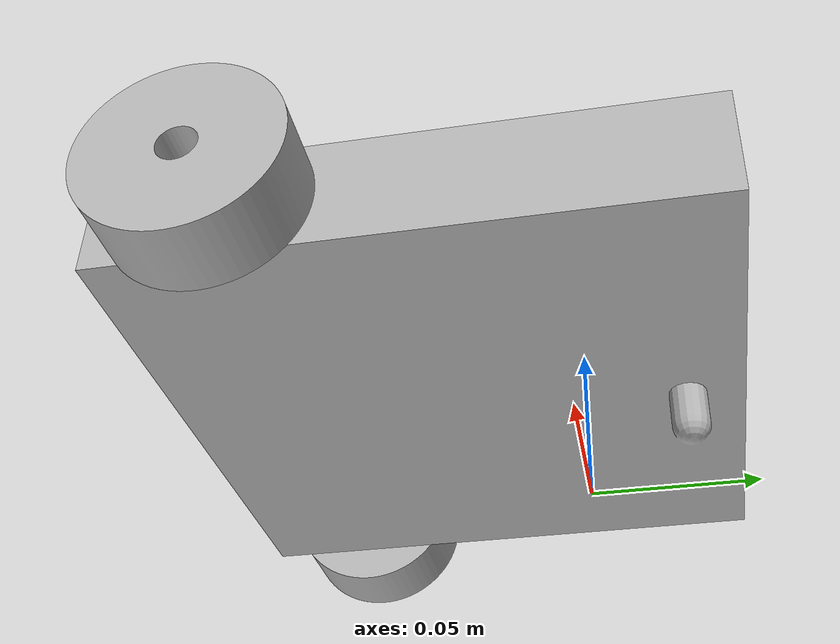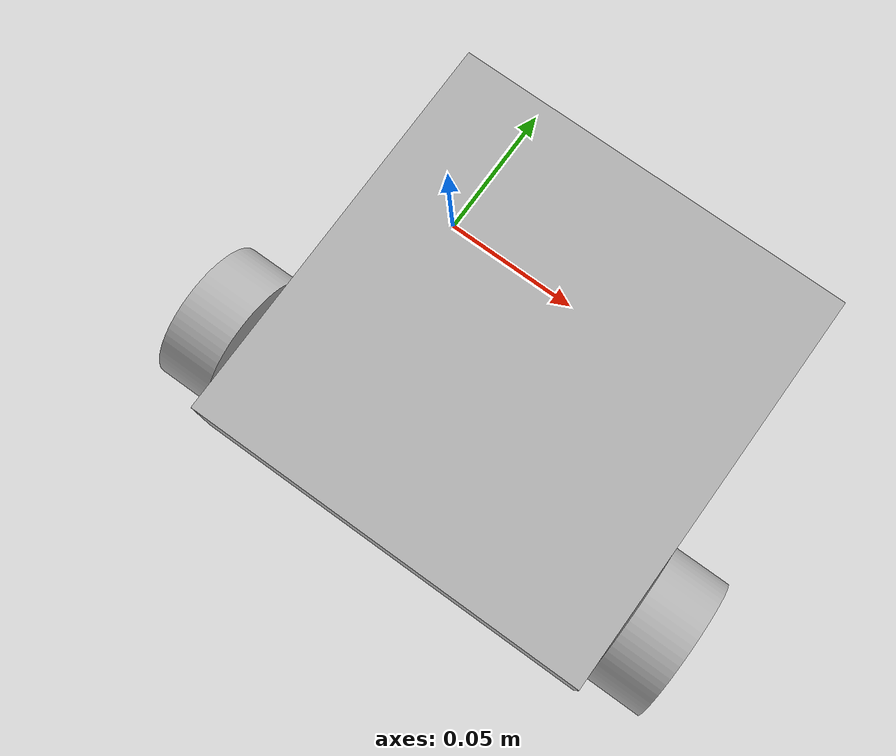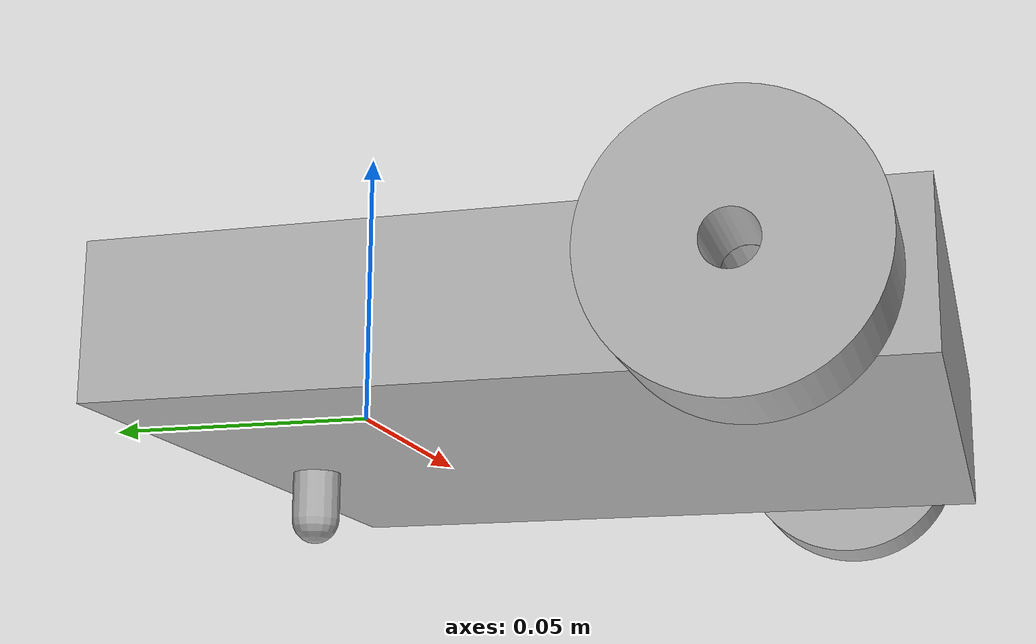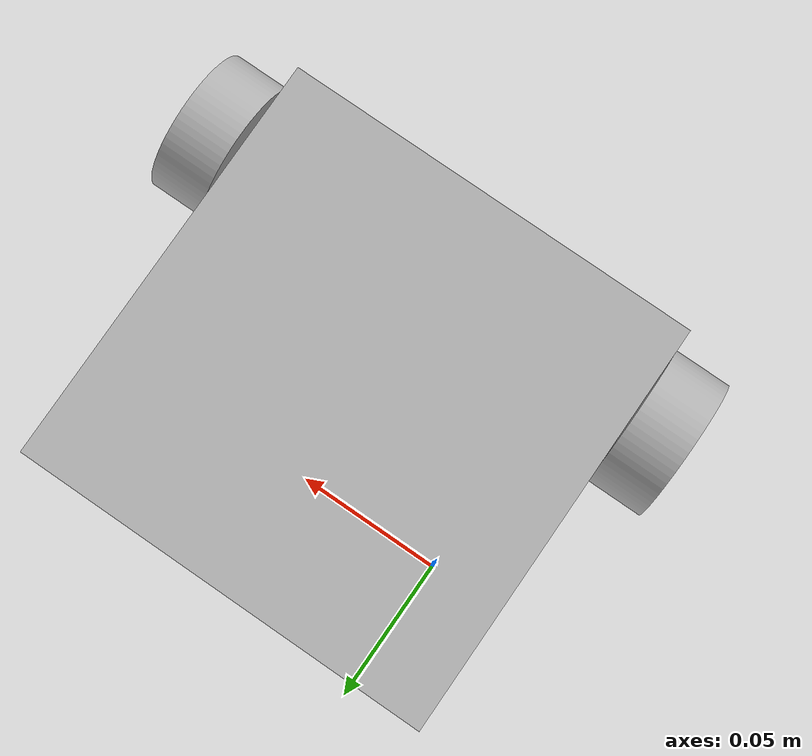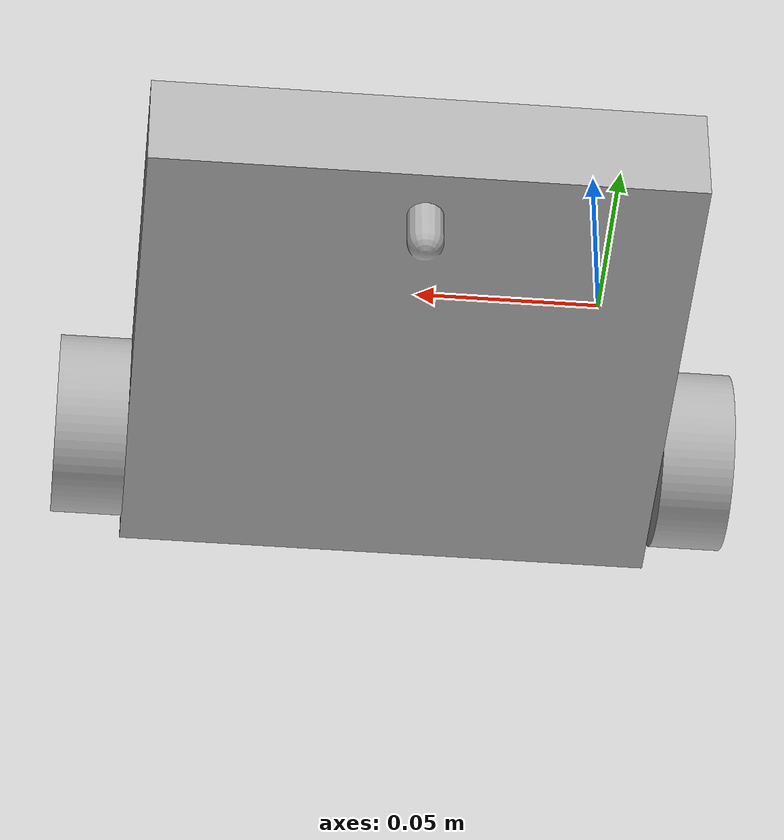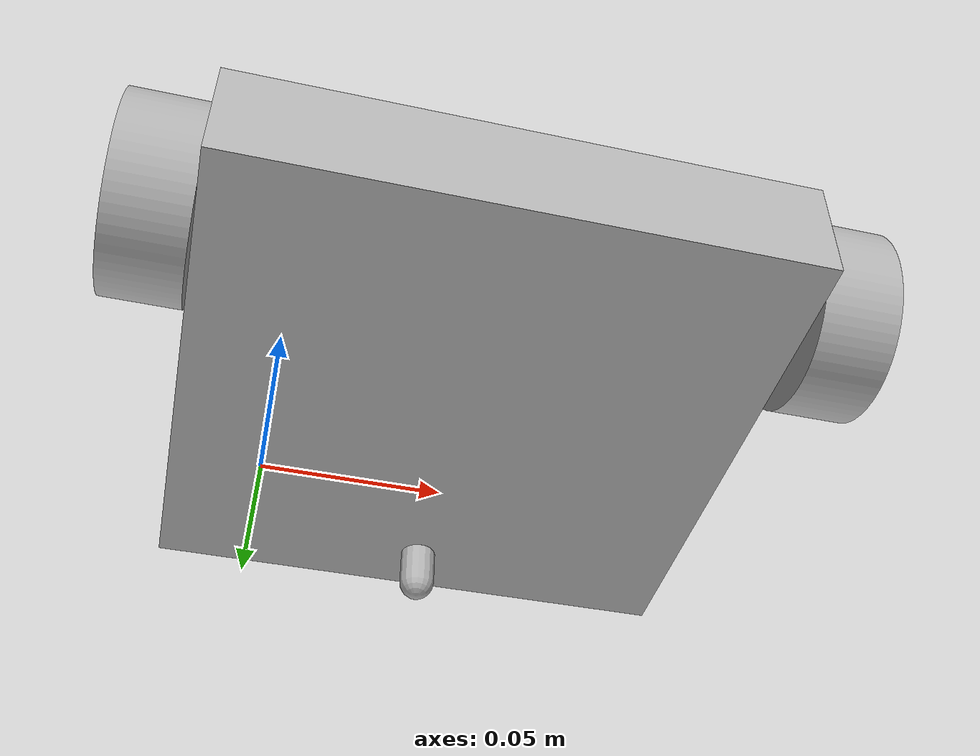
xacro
<?xml version="1.0" ?>
<robot name="Manual" xmlns:xacro="http://www.ros.org/wiki/xacro">

<xacro:include filename="$(find Manual_description)/urdf/materials.xacro" />
<xacro:include filename="$(find Manual_description)/urdf/Manual.trans" />
<xacro:include filename="$(find Manual_description)/urdf/Manual.gazebo" />
<link name="base_link">
  <inertial>
    <origin xyz="0.05000000000000093 -0.029107322349144583 0.014965760984142127" rpy="0 0 0"/>
    <mass value="5.214489867036844"/>
    <inertia ixx="0.010174" iyy="0.010163" izz="0.019535" ixy="-0.0" iyz="1.1e-05" ixz="0.0"/>
  </inertial>
  <visual>
    <origin xyz="0 0 0" rpy="0 0 0"/>
    <geometry>
      <mesh filename="package://Manual_description/meshes/base_link.stl" scale="0.001 0.001 0.001"/>
    </geometry>
    <material name="silver"/>
  </visual>
  <collision>
    <origin xyz="0 0 0" rpy="0 0 0"/>
    <geometry>
      <mesh filename="package://Manual_description/meshes/base_link.stl" scale="0.001 0.001 0.001"/>
    </geometry>
  </collision>
</link>

<link name="wheelR_1">
  <inertial>
    <origin xyz="0.010000000000000064 0.0 2.1831494945168117e-14" rpy="0 0 0"/>
    <mass value="0.295938027968158"/>
    <inertia ixx="9.6e-05" iyy="5.8e-05" izz="5.8e-05" ixy="0.0" iyz="0.0" ixz="0.0"/>
  </inertial>
  <visual>
    <origin xyz="-0.125 0.075 -0.015" rpy="0 0 0"/>
    <geometry>
      <mesh filename="package://Manual_description/meshes/wheelR_1.stl" scale="0.001 0.001 0.001"/>
    </geometry>
    <material name="silver"/>
  </visual>
  <collision>
    <origin xyz="-0.125 0.075 -0.015" rpy="0 0 0"/>
    <geometry>
      <mesh filename="package://Manual_description/meshes/wheelR_1.stl" scale="0.001 0.001 0.001"/>
    </geometry>
  </collision>
</link>

<link name="WheelL_1">
  <inertial>
    <origin xyz="-0.010000000000000002 -2.1788126858268697e-14 -1.734723475976807e-17" rpy="0 0 0"/>
    <mass value="0.295938027968158"/>
    <inertia ixx="9.6e-05" iyy="5.8e-05" izz="5.8e-05" ixy="0.0" iyz="-0.0" ixz="0.0"/>
  </inertial>
  <visual>
    <origin xyz="0.025 0.075 -0.015" rpy="0 0 0"/>
    <geometry>
      <mesh filename="package://Manual_description/meshes/WheelL_1.stl" scale="0.001 0.001 0.001"/>
    </geometry>
    <material name="silver"/>
  </visual>
  <collision>
    <origin xyz="0.025 0.075 -0.015" rpy="0 0 0"/>
    <geometry>
      <mesh filename="package://Manual_description/meshes/WheelL_1.stl" scale="0.001 0.001 0.001"/>
    </geometry>
  </collision>
</link>

<joint name="Revolute 1" type="continuous">
  <origin xyz="0.125 -0.075 0.015" rpy="0 0 0"/>
  <parent link="base_link"/>
  <child link="wheelR_1"/>
  <axis xyz="-1.0 0.0 0.0"/>
</joint>

<joint name="Revolute 2" type="continuous">
  <origin xyz="-0.025 -0.075 0.015" rpy="0 0 0"/>
  <parent link="base_link"/>
  <child link="WheelL_1"/>
  <axis xyz="1.0 0.0 0.0"/>
</joint>

</robot>

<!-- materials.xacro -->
<robot name="Manual" xmlns:xacro="http://www.ros.org/wiki/xacro" >

<material name="silver">
  <color rgba="0.700 0.700 0.700 1.000"/>
</material>

</robot>

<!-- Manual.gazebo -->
<robot name="Manual" xmlns:xacro="http://www.ros.org/wiki/xacro" >

<xacro:property name="body_color" value="Gazebo/Silver" />
<!-- property of base_link -->
<xacro:property name="base_link_length" value="0.15"/>
<xacro:property name="wheel_radius" value="0.05"/>

<gazebo>
	<plugin  name="diff_drive" filename="libgazebo_ros_diff_drive.so">
		<robotNamespace>/</robotNamespace>
		<commandTopic>/cmd_vel</commandTopic>
		<odometryTopic>odom</odometryTopic>
		<odometryFrame>odom</odometryFrame>
		<robotBaseFrame>base_link</robotBaseFrame>
		<publishWheelTF>false</publishWheelTF>
		<publishOdomTF>true</publishOdomTF>
    <alwaysOn>true</alwaysOn>
		<publishWheelJointState>false</publishWheelJointState>
		<legacyMode>true</legacyMode>

		<wheelSeparation>${wheel_radius}</wheelSeparation>
		<wheelDiameter>${base_link_length}</wheelDiameter>
		<wheelAcceleration>1.0</wheelAcceleration>
		<wheelTorque>20.0</wheelTorque>
		<updateRate>10.0</updateRate>
		<leftJoint>WheelL_1</leftJoint>
		<rightJoint>wheelR_1</rightJoint>
	</plugin>

</gazebo>

<gazebo reference="base_link">
  <material>${body_color}</material>
  <mu1>0.2</mu1>
  <mu2>0.2</mu2>
  <kp value="10000000.0" />
	<kd value="1.0" />
  <fdir1 value="1 0 0"/>
  <turnGravityOff>false</turnGravityOff>
</gazebo>

<gazebo reference="wheelR_1">
  <material>${body_color}</material>
  <mu1>0.2</mu1>
  <mu2>0.2</mu2>
  <kp value="10000000.0" />
	<kd value="1.0" />
  <fdir1 value="1 0 0"/>
  <turnGravityOff>false</turnGravityOff>
</gazebo>

<gazebo reference="WheelL_1">
  <material>${body_color}</material>
  <kp value="10000000.0" />
	<kd value="1.0" />
  <mu1>0.2</mu1>
  <mu2>0.2</mu2>
  <fdir1 value="1 0 0"/>
  <turnGravityOff>false</turnGravityOff>
</gazebo>

</robot>
